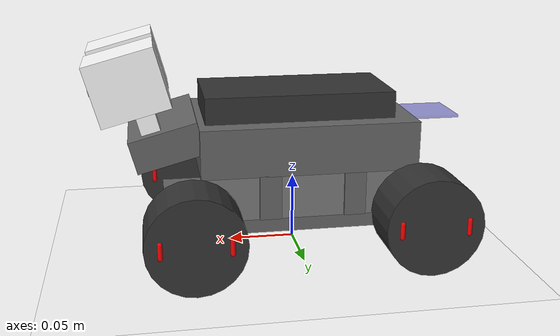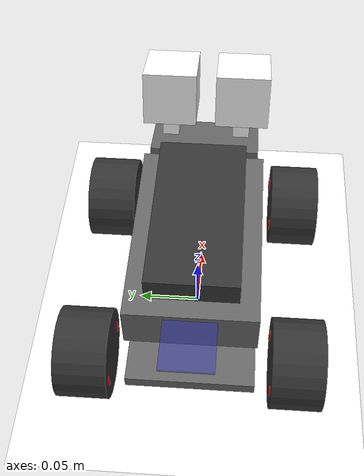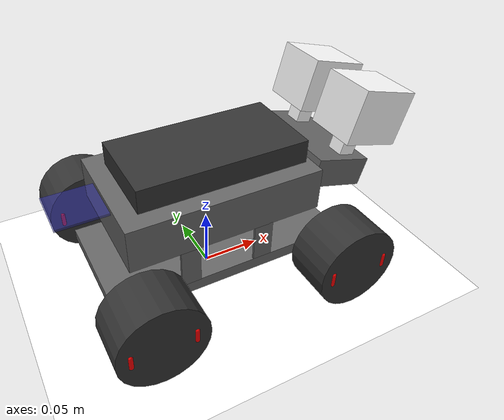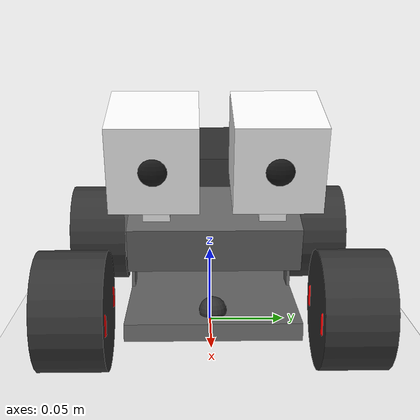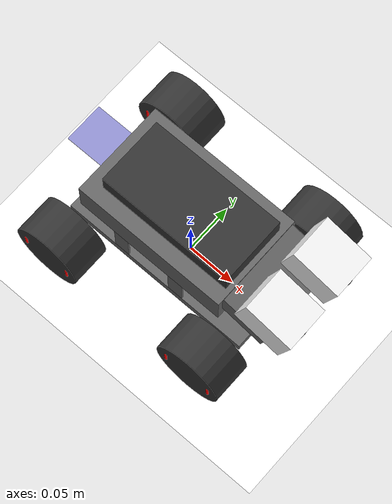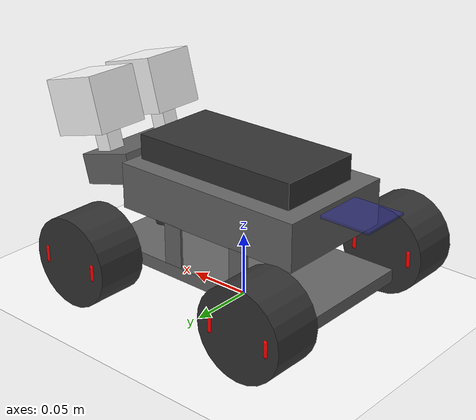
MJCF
<mujoco model="deepracer_circuit">

    <compiler angle="radian" inertiafromgeom="true" texturedir="Textures" />
    <option gravity="0 0 -9.81" timestep="0.002" />

    <include file="sharp_deepracer.xml"/> <!-- deepracer.xml -->

    <asset>
        <texture type="skybox" builtin="gradient" rgb1="0.6 0.6 0.8" rgb2="0.4 0.6 0.8" width="256" height="256"/>
        <texture builtin="gradient" height="100" rgb1=".4 .5 .6" rgb2="0 0 0" type="skybox" width="100" />
        <texture name="gravel" type="2d" file="gravel.png"/>
        <material name="Gravel" texrepeat="20 20" texture="gravel" />

        <!-- Straight pos="3 0.3 0" size="6 5 0.125" -->
        <texture name="straight" type="2d" file="_straight.png"/>
        <material name="straight_circuit" texture="straight" />

        <!-- Left Corner pos="2.4 2.7 0" size="6 5 0.125" -->
        <texture name="leftcorner" type="2d" file="_leftcorner.png"/>
        <material name="leftcorner_circuit" texture="leftcorner" />

        <!-- Right Corner pos="2.4 -2.65 0" size="6 5 0.125" -->
        <texture name="rightcorner" type="2d" file="_rightcorner.png"/>
        <material name="rightcorner_circuit" texture="rightcorner" />

        <!-- Oval Circuit pos="0.7 2.3 0" size="6 3 0.125" -->
        <texture name="oval" type="2d" file="_oval.png"/>
        <material name="oval_circuit" texture="oval" />

        <!-- Bowtie Circuit pos="-0.1 1.7 0" size="6 5 0.125" -->
        <texture name="bowtie" type="2d" file="_bowtie.png"/>
        <material name="bowtie_circuit" texture="bowtie" />

        <!-- Simple Circuit pos="1.2 3.75 0" size="6 5 0.125" -->
        <texture name="simple" type="2d" file="_simple.png"/>
        <material name="simple_circuit" texture="simple" />

        <!-- Monza Circuit pos="0.1 3.9 0" size="6 5 0.125" -->
        <texture name="monza" type="2d" file="_monza.png"/>
        <material name="monza_circuit" texture="monza" />
    </asset>

    <worldbody>
        <light directional="true" diffuse=".8 .8 .8" specular=".2 .2 .2" pos="0 0 5" dir="0 0 -1"/>
        <geom type="plane" material="straight_circuit" contype="1" condim="3" friction=".5 0.005 0.0001" rgba="1 1 1 1" pos="0 0.3 0" size="6 5 0.125" />
        <geom type="plane" material="Gravel" contype="1" condim="3" friction=".5 0.005 0.0001" pos="0 0 -0.01" rgba="1 1 1 1" size="15 15 0.125" />
    </worldbody>

</mujoco>

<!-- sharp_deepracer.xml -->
<mujoco model="deepracer">

    <compiler angle="radian" inertiafromgeom="true" meshdir="Meshes"/>

    <default>
        <default class="wheel">
            <geom type="cylinder" size="0.035 0.02" quat="0.707107 0.707107 0 0" mass="0.042222" contype="1" conaffinity="0" friction="2 0.005 0.0001" />
        </default>
        <default class="z_joint">
            <joint type="hinge" axis="0 0 1" damping="0.01" armature="0.0002" frictionloss="0.01" limited="true" range="-0.523599 0.523599" />
        </default>
        <default class="y_joint">
            <joint type="hinge" axis="0 1 0" damping="0.01" armature="0.01" frictionloss="0.001" />
        </default>
        <geom rgba="0.2 0.2 0.2 1"/>
        <site size="0.002 0.005" type="capsule" rgba="1 0 0 1" />
    </default>

    <worldbody>

        <body name="aws_deepracer">
            <joint type="free" />
            <site name="sensor" pos="0 0 0.1" />
            <camera name="DR_fixed" mode="trackcom" pos="-1.5 0 1.25" xyaxes="0 -1 0 0.707 0 0.707" />
            <camera name="DR_orient" mode="targetbodycom" target="chassis" pos="-1 0 0.6" xyaxes="0 -1 0 0.707 0 0.707" />

            <body name="chassis" pos="0 0 0.025">
                <geom name="low_base" pos="0 0 0.005" type="box" size="0.1 0.05 0.005" mass="0.4767" rgba="0.4 0.4 0.4 1" contype="2" conaffinity="2" />
                <geom name="fr_column" pos="0.025 -0.049 0.026" type="box" size="0.008 0.001 0.0165" mass="0.001" rgba="0.4 0.4 0.4 1" contype="2" conaffinity="2" />
                <geom name="fl_column" pos="0.025 0.049 0.026" type="box" size="0.008 0.001 0.0165" mass="0.001" rgba="0.4 0.4 0.4 1" contype="2" conaffinity="2" />
                <geom name="br_column" pos="-0.0375 -0.049 0.026" type="box" size="0.008 0.001 0.0165" mass="0.001" rgba="0.4 0.4 0.4 1" contype="2" conaffinity="2" />
                <geom name="bl_column" pos="-0.0375 0.049 0.026" type="box" size="0.008 0.001 0.0165" mass="0.001" rgba="0.4 0.4 0.4 1" contype="2" conaffinity="2" />
                <geom name="top_base" pos="-0.005 0 0.06" type="box" size="0.08 0.05 0.018" mass="1.2301" rgba="0.4 0.4 0.4 1" contype="2" conaffinity="2" />
                <geom name="battery" pos="0 0 0.0875" type="box" size="0.07 0.035 0.01" mass="0.001" contype="2" conaffinity="2" />
                <geom name="led_tail" pos="-0.105 0 0.073" type="box" size="0.02 0.02 0.001" mass="0.001" rgba="0.2 0.2 0.7 0.5" contype="2" conaffinity="2" />
                <geom name="camera_base" pos="0.0975 0 0.065" quat="0 0.1301299 0 0.991497" type="box" size="0.025 0.045 0.012" mass="0.2" rgba="0.4 0.4 0.4 1" contype="2" conaffinity="2" />

                <body name="steering_wheel" pos="0.082311 0 0.011759">
                    <geom type="sphere" size="0.008" quat="0 1 0 0" mass="0.005" contype="0" conaffinity="0" />
                    <joint name="steering_wheel" class="z_joint" />
                </body>
                <body name="right_front_wheel" pos="0.082311 -0.079601 0.011759">
                    <geom class="wheel" />
                    <joint name="RF_steering_joint" class="z_joint" />
                    <joint name="RFw_joint" class="y_joint" />

                    <site pos="0.024 0.019 0" />
                    <site pos="0.024 -0.019 0" />
                    <site pos="-0.024 0.019 0" />
                    <site pos="-0.024 -0.019 0" />
                </body>
                <body name="left_front_wheel" pos="0.082311 0.079601 0.011759">
                    <geom class="wheel" />
                    <joint name="LF_steering_joint" class="z_joint" />
                    <joint name="LFw_joint" class="y_joint" />

                    <site pos="0.024 0.019 0" />
                    <site pos="0.024 -0.019 0" />
                    <site pos="-0.024 0.019 0" />
                    <site pos="-0.024 -0.019 0" />
                </body>

                <body name="right_back_wheel" pos="-0.081663 -0.08105 0.01575">
                    <geom class="wheel" />
                    <joint name="RBw_joint" class="y_joint" />

                    <site pos="0.024 0.019 0" />
                    <site pos="0.024 -0.019 0" />
                    <site pos="-0.024 0.019 0" />
                    <site pos="-0.024 -0.019 0" />
                </body>
                <body name="left_back_wheel" pos="-0.081663 0.08105 0.01575">
                    <geom class="wheel" />
                    <joint name="LBw_joint" class="y_joint" />

                    <site pos="0.024 0.019 0" />
                    <site pos="0.024 -0.019 0" />
                    <site pos="-0.024 0.019 0" />
                    <site pos="-0.024 -0.019 0" />
                </body>
                <body name="cameras" pos="0.094211 -0.03 0.079989" quat="0.9914445 -0.0001039 0.1305265 0.0007895">
                    <geom name="r_camera" pos="0.02 0 0.037" mass="0.002" type="box" size="0.025 0.022 0.022" rgba="1 1 1 1" contype="2" conaffinity="2" group="1" />
                    <geom type="box" size="0.007 0.007 0.009" pos="0.015 0 0.007" rgba="1 1 1 1" contype="2" conaffinity="2" group="1" />
                    <geom name="l_camera" pos="0.02 0.06 0.037" mass="0.002" type="box" size="0.025 0.022 0.022" rgba="1 1 1 1" contype="2" conaffinity="2" group="1" />
                    <geom type="box" size="0.007 0.007 0.009" pos="0.015 0.06 0.007" rgba="1 1 1 1" contype="2" conaffinity="2" group="1" />
                    <camera name="R_camera" mode="fixed" fovy="120" pos="0.045 0 0.037" quat="-0.5 -0.4999518 0.5 0.5000482" />
                    <camera name="L_camera" mode="fixed" fovy="120" pos="0.045 0.06 0.037" quat="-0.5 -0.4999518 0.5 0.5000482" />

                    <site pos="0.045 0 0.037" size="0.003 0.007 0.007" type="ellipsoid" rgba="0.1 0.1 0.1 1" />
                    <site pos="0.045 0.06 0.037" size="0.003 0.007 0.007" type="ellipsoid" rgba="0.1 0.1 0.1 1" />
                </body>
            </body>
        </body>
    </worldbody>

    <asset>
    </asset>

    <actuator>
        <motor joint="RBw_joint" name="throttle_motor" ctrllimited="true" ctrlrange="-1 1" gear="1.5" />
        <position joint="steering_wheel" name="steering_motor" ctrllimited="true" ctrlrange="-0.523599 0.523599" kp="1" />
    </actuator>

    <equality>
        <!-- L=0.163974: distanza assi, l=0.159202: distanza ruote anteriori; delta=-pi/2-arctg(L/(L/tan(delta)+-l/2)) -->
        <joint joint1="LF_steering_joint" joint2="steering_wheel" polycoef="0 0.9708978253 -0.00051 0.1896603979 0.900623517"/>
        <joint joint1="RF_steering_joint" joint2="steering_wheel" polycoef="0 0.9708978253 0.00051 0.1896603979 -0.900623517"/>
        <!-- same actuation for both rear wheels -->
        <joint joint1="RBw_joint" joint2="LBw_joint" polycoef="0 1 0 0 0" />
        <joint joint1="RBw_joint" joint2="LFw_joint" polycoef="0 1 0 0 0" />
        <joint joint1="RBw_joint" joint2="RFw_joint" polycoef="0 1 0 0 0" />
    </equality>

    <sensor>
        <accelerometer name="deepracer_acc" site="sensor" />
        <velocimeter name="deepracer_vel" site="sensor" />
        <gyro name="deepracer_gyro" site="sensor" />
    </sensor>

</mujoco>
